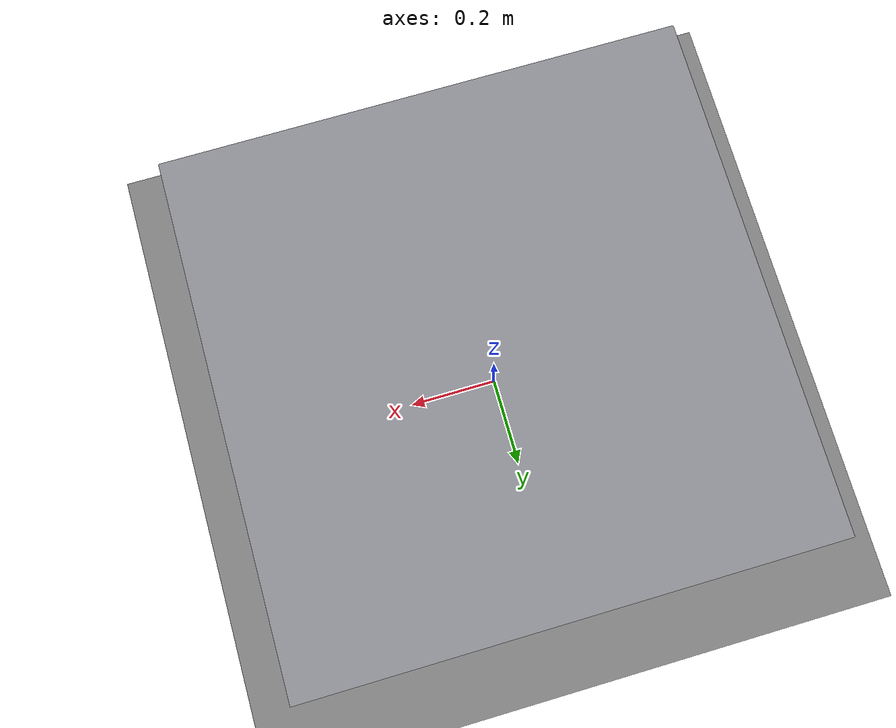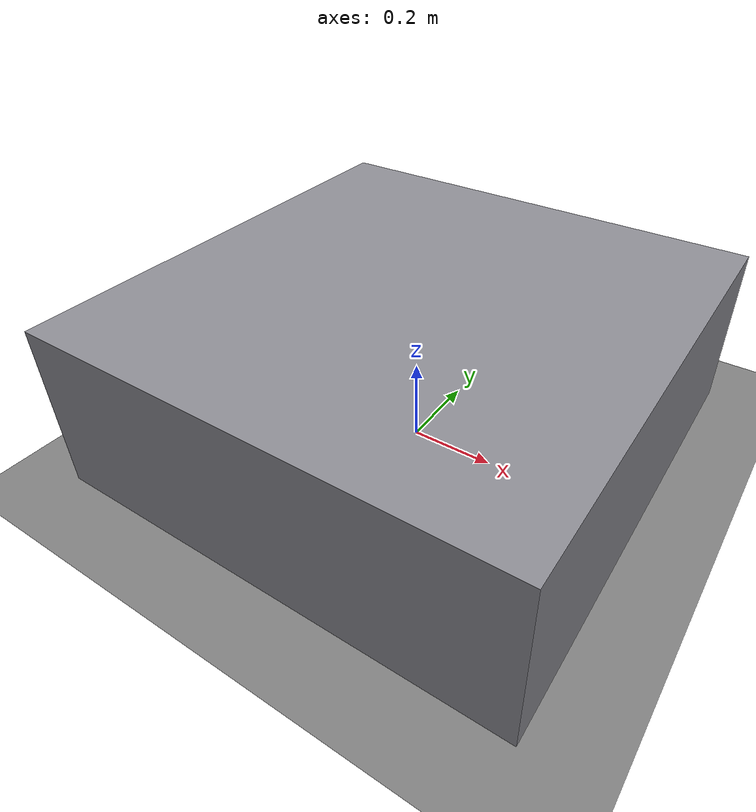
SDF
<sdf version='1.10'>
  <world name='default'>
    <gravity>0 0 -9.8000000000000007</gravity>
    <magnetic_field>5.5644999999999998e-06 2.2875799999999999e-05 -4.2388400000000002e-05</magnetic_field>
    <atmosphere type='adiabatic'/>
   <physics name="1ms" type="bullet">
    <max_step_size>0.002</max_step_size>
    <real_time_factor>1.0</real_time_factor>
  </physics>

  <plugin filename="gz-sim-physics-system"
          name="gz::sim::systems::Physics"/>

  <plugin filename="gz-sim-user-commands-system"
          name="gz::sim::systems::UserCommands"/>

  <plugin filename="gz-sim-scene-broadcaster-system"
          name="gz::sim::systems::SceneBroadcaster"/>

  <!-- force_torque sensors (group_a's gripper force pad) -->
  <plugin filename="gz-sim-forcetorque-system"
          name="gz::sim::systems::ForceTorque"/>

  <plugin filename="gz-sim-sensors-system"
          name="gz::sim::systems::Sensors">
    <render_engine>ogre2</render_engine>
  </plugin>

    <scene>
      <ambient>0.400000006 0.400000006 0.400000006 1</ambient>
      <background>0.699999988 0.699999988 0.699999988 1</background>
      <shadows>true</shadows>
    </scene>
    <model name='my_custom_ground_plane'>
      <static>true</static>
      <link name='link'>
        <collision name='collision'>
          <geometry>
            <plane>
              <normal>0 0 1</normal>
              <size>100 100</size>
            </plane>
          </geometry>
          <surface>
            <friction>
              <ode/>
            </friction>
            <bounce/>
            <contact/>
          </surface>
        </collision>
        <visual name='visual'>
          <geometry>
            <plane>
              <normal>0 0 1</normal>
              <size>100 100</size>
            </plane>
          </geometry>
          <material>
            <ambient>0.5 0.5 0.5 1</ambient>
            <diffuse>0.5 0.5 0.5 1</diffuse>
          </material>
        </visual>
        <pose>0 0 0 0 0 0</pose>
        <inertial>
          <pose>0 0 0 0 0 0</pose>
          <mass>1</mass>
          <inertia>
            <ixx>1</ixx>
            <ixy>0</ixy>
            <ixz>0</ixz>
            <iyy>1</iyy>
            <iyz>0</iyz>
            <izz>1</izz>
          </inertia>
        </inertial>
        <enable_wind>false</enable_wind>
      </link>
      <pose>0 0 0 0 0 0</pose>
      <self_collide>false</self_collide>
    </model>
    <include>
      <uri>model://robot_pedestal</uri>
      <name>robot_pedestal</name>
      <pose>0 0 0 0 0 0</pose>
    </include>

    <light name='directionallight' type='directional'>
      <pose>3.0200743590028551 2.9018960248054797 2 0 0 0</pose>
      <cast_shadows>true</cast_shadows>
      <intensity>1</intensity>
      <direction>0 0 -1</direction>
      <diffuse>0.800000012 0.800000012 0.800000012 1</diffuse>
      <specular>0.200000003 0.200000003 0.200000003 1</specular>
      <attenuation>
        <range>1000</range>
        <linear>0.01</linear>
        <constant>0.90000000000000002</constant>
        <quadratic>0.001</quadratic>
      </attenuation>
      <spot>
        <inner_angle>0</inner_angle>
        <outer_angle>0</outer_angle>
        <falloff>0</falloff>
      </spot>
    </light>
  </world>
</sdf>

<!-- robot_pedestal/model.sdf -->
<sdf version="1.10">
  <model name="robot_pedestal">
    <static>true</static>
    <link name="pedestal_link">
      <visual name="pedestal_visual">
        <pose>0 0 0.2 0 0 0</pose>
        <geometry>
          <box>
            <size>1.12 1.12 0.4</size>
          </box>
        </geometry>
        <material>
          <ambient>0.55 0.55 0.58 1</ambient>
          <diffuse>0.55 0.55 0.58 1</diffuse>
        </material>
      </visual>
      <collision name="pedestal_collision">
        <pose>0 0 0.2 0 0 0</pose>
        <geometry>
          <box>
            <size>1.12 1.12 0.4</size>
          </box>
        </geometry>
      </collision>
    </link>
  </model>
</sdf>
